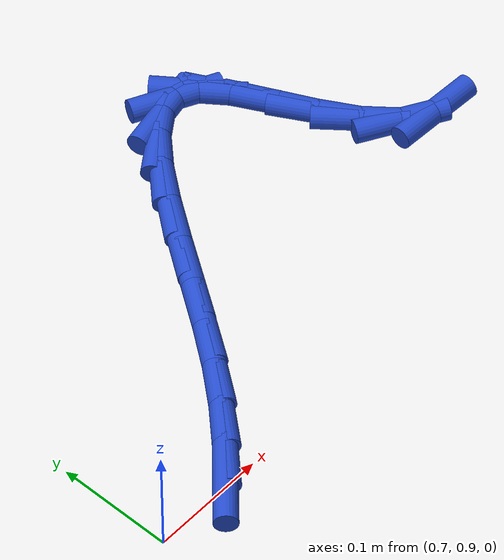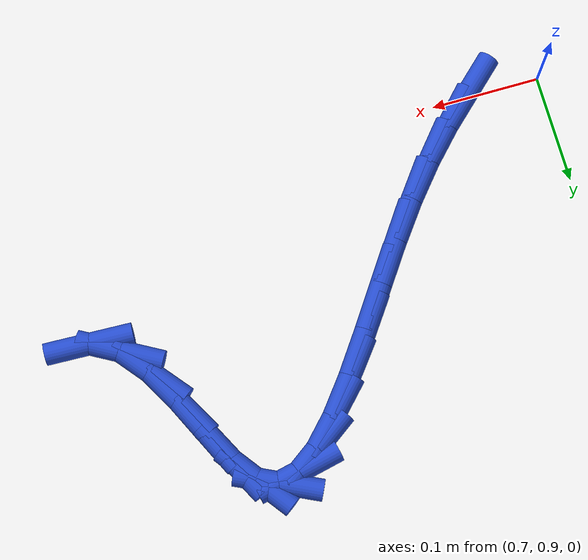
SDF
<sdf version="1.6">
 <world name="default">
  <model name="ground_plane">
   <static>1</static>
   <link name="link">
    <collision name="collision">
     <geometry><plane><normal>0 0 1</normal><size>100 100</size></plane></geometry>
     <surface><friction><ode><mu>100</mu><mu2>50</mu2></ode></friction></surface>
    </collision>
    <visual name="visual">
     <cast_shadows>0</cast_shadows>
     <geometry><plane><normal>0 0 1</normal><size>100 100</size></plane></geometry>
     <material>
      <script><uri>file://media/materials/scripts/gazebo.material</uri><name>Gazebo/WhiteGlow</name></script>
     </material>
    </visual>
   </link>
  </model>
  <model name="line">
   <link name="link_39">
    <pose>0.7681674538279477 0.8989621941453881 0.01 0 1.57 0.7479890849613909</pose>
    <collision name="collision">
     <geometry><cylinder><radius>0.01</radius><length>0.08</length></cylinder></geometry>
    </collision>
    <visual name="visual">
     <material>
      <script><name>Gazebo/Blue</name><uri>file://media/materials/scripts/gazebo.material</uri></script>
     </material>
     <geometry><cylinder><radius>0.01</radius><length>0.08</length></cylinder></geometry>
    </visual>
   </link>
   <link name="link_40">
    <pose>0.7940023159540255 0.9229330024165652 0.01 0 1.57 0.809381516008995</pose>
    <collision name="collision">
     <geometry><cylinder><radius>0.01</radius><length>0.08</length></cylinder></geometry>
    </collision>
    <visual name="visual">
     <material>
      <script><name>Gazebo/Blue</name><uri>file://media/materials/scripts/gazebo.material</uri></script>
     </material>
     <geometry><cylinder><radius>0.01</radius><length>0.08</length></cylinder></geometry>
    </visual>
   </link>
   <link name="link_41">
    <pose>0.8197526331664358 0.9499490773147576 0.01 0 1.57 0.8712639860786564</pose>
    <collision name="collision">
     <geometry><cylinder><radius>0.01</radius><length>0.08</length></cylinder></geometry>
    </collision>
    <visual name="visual">
     <material>
      <script><name>Gazebo/Blue</name><uri>file://media/materials/scripts/gazebo.material</uri></script>
     </material>
     <geometry><cylinder><radius>0.01</radius><length>0.08</length></cylinder></geometry>
    </visual>
   </link>
   <link name="link_42">
    <pose>0.8454051874087583 0.9804337853311855 0.01 0 1.57 0.9275647869740576</pose>
    <collision name="collision">
     <geometry><cylinder><radius>0.01</radius><length>0.08</length></cylinder></geometry>
    </collision>
    <visual name="visual">
     <material>
      <script><name>Gazebo/Blue</name><uri>file://media/materials/scripts/gazebo.material</uri></script>
     </material>
     <geometry><cylinder><radius>0.01</radius><length>0.08</length></cylinder></geometry>
    </visual>
   </link>
   <link name="link_43">
    <pose>0.8709216324254584 1.014474825673467 0.01 0 1.57 0.9600698403931758</pose>
    <collision name="collision">
     <geometry><cylinder><radius>0.01</radius><length>0.08</length></cylinder></geometry>
    </collision>
    <visual name="visual">
     <material>
      <script><name>Gazebo/Blue</name><uri>file://media/materials/scripts/gazebo.material</uri></script>
     </material>
     <geometry><cylinder><radius>0.01</radius><length>0.08</length></cylinder></geometry>
    </visual>
   </link>
   <link name="link_44">
    <pose>0.896139370747404 1.0505001261041893 0.01 0 1.57 0.9681425664664552</pose>
    <collision name="collision">
     <geometry><cylinder><radius>0.01</radius><length>0.08</length></cylinder></geometry>
    </collision>
    <visual name="visual">
     <material>
      <script><name>Gazebo/Blue</name><uri>file://media/materials/scripts/gazebo.material</uri></script>
     </material>
     <geometry><cylinder><radius>0.01</radius><length>0.08</length></cylinder></geometry>
    </visual>
   </link>
   <link name="link_45">
    <pose>0.9208574692893257 1.0864255199029347 0.01 0 1.57 0.9521839637314978</pose>
    <collision name="collision">
     <geometry><cylinder><radius>0.01</radius><length>0.08</length></cylinder></geometry>
    </collision>
    <visual name="visual">
     <material>
      <script><name>Gazebo/Blue</name><uri>file://media/materials/scripts/gazebo.material</uri></script>
     </material>
     <geometry><cylinder><radius>0.01</radius><length>0.08</length></cylinder></geometry>
    </visual>
   </link>
   <link name="link_46">
    <pose>0.944874984016002 1.120166694077723 0.01 0 1.57 0.9056896578907303</pose>
    <collision name="collision">
     <geometry><cylinder><radius>0.01</radius><length>0.08</length></cylinder></geometry>
    </collision>
    <visual name="visual">
     <material>
      <script><name>Gazebo/Blue</name><uri>file://media/materials/scripts/gazebo.material</uri></script>
     </material>
     <geometry><cylinder><radius>0.01</radius><length>0.08</length></cylinder></geometry>
    </visual>
   </link>
   <link name="link_47">
    <pose>0.9679909708922108 1.1496393356365728 0.01 0 1.57 0.8099046634219983</pose>
    <collision name="collision">
     <geometry><cylinder><radius>0.01</radius><length>0.08</length></cylinder></geometry>
    </collision>
    <visual name="visual">
     <material>
      <script><name>Gazebo/Blue</name><uri>file://media/materials/scripts/gazebo.material</uri></script>
     </material>
     <geometry><cylinder><radius>0.01</radius><length>0.08</length></cylinder></geometry>
    </visual>
   </link>
   <link name="link_48">
    <pose>0.9900044858827304 1.172759131587503 0.01 0 1.57 0.6167142860689221</pose>
    <collision name="collision">
     <geometry><cylinder><radius>0.01</radius><length>0.08</length></cylinder></geometry>
    </collision>
    <visual name="visual">
     <material>
      <script><name>Gazebo/Blue</name><uri>file://media/materials/scripts/gazebo.material</uri></script>
     </material>
     <geometry><cylinder><radius>0.01</radius><length>0.08</length></cylinder></geometry>
    </visual>
   </link>
   <link name="link_49">
    <pose>1.0107145849523387 1.1874417689385328 0.01 0 1.57 0.21336477712065735</pose>
    <collision name="collision">
     <geometry><cylinder><radius>0.01</radius><length>0.08</length></cylinder></geometry>
    </collision>
    <visual name="visual">
     <material>
      <script><name>Gazebo/Blue</name><uri>file://media/materials/scripts/gazebo.material</uri></script>
     </material>
     <geometry><cylinder><radius>0.01</radius><length>0.08</length></cylinder></geometry>
    </visual>
   </link>
   <link name="link_50">
    <pose>1.029920324065814 1.1916029346976815 0.01 0 1.57 -0.4494004433744486</pose>
    <collision name="collision">
     <geometry><cylinder><radius>0.01</radius><length>0.08</length></cylinder></geometry>
    </collision>
    <visual name="visual">
     <material>
      <script><name>Gazebo/Blue</name><uri>file://media/materials/scripts/gazebo.material</uri></script>
     </material>
     <geometry><cylinder><radius>0.01</radius><length>0.08</length></cylinder></geometry>
    </visual>
   </link>
   <link name="link_51">
    <pose>1.0474214323632418 1.1831618732783176 0.01 0 1.57 -0.9298503274344448</pose>
    <collision name="collision">
     <geometry><cylinder><radius>0.01</radius><length>0.08</length></cylinder></geometry>
    </collision>
    <visual name="visual">
     <material>
      <script><name>Gazebo/Blue</name><uri>file://media/materials/scripts/gazebo.material</uri></script>
     </material>
     <geometry><cylinder><radius>0.01</radius><length>0.08</length></cylinder></geometry>
    </visual>
   </link>
   <link name="link_52">
    <pose>1.0633524372819556 1.161807075886515 0.01 0 1.57 -1.0966642260439485</pose>
    <collision name="collision">
     <geometry><cylinder><radius>0.01</radius><length>0.08</length></cylinder></geometry>
    </collision>
    <visual name="visual">
     <material>
      <script><name>Gazebo/Blue</name><uri>file://media/materials/scripts/gazebo.material</uri></script>
     </material>
     <geometry><cylinder><radius>0.01</radius><length>0.08</length></cylinder></geometry>
    </visual>
   </link>
   <link name="link_53">
    <pose>1.0787234840074886 1.1318542492947743 0.01 0 1.57 -1.1259893347179983</pose>
    <collision name="collision">
     <geometry><cylinder><radius>0.01</radius><length>0.08</length></cylinder></geometry>
    </collision>
    <visual name="visual">
     <material>
      <script><name>Gazebo/Blue</name><uri>file://media/materials/scripts/gazebo.material</uri></script>
     </material>
     <geometry><cylinder><radius>0.01</radius><length>0.08</length></cylinder></geometry>
    </visual>
   </link>
   <link name="link_54">
    <pose>1.0946860972045622 1.098366222325393 0.01 0 1.57 -1.0648958203347527</pose>
    <collision name="collision">
     <geometry><cylinder><radius>0.01</radius><length>0.08</length></cylinder></geometry>
    </collision>
    <visual name="visual">
     <material>
      <script><name>Gazebo/Blue</name><uri>file://media/materials/scripts/gazebo.material</uri></script>
     </material>
     <geometry><cylinder><radius>0.01</radius><length>0.08</length></cylinder></geometry>
    </visual>
   </link>
   <link name="link_55">
    <pose>1.1123918015378984 1.0664058238006695 0.01 0 1.57 -0.8887827363853509</pose>
    <collision name="collision">
     <geometry><cylinder><radius>0.01</radius><length>0.08</length></cylinder></geometry>
    </collision>
    <visual name="visual">
     <material>
      <script><name>Gazebo/Blue</name><uri>file://media/materials/scripts/gazebo.material</uri></script>
     </material>
     <geometry><cylinder><radius>0.01</radius><length>0.08</length></cylinder></geometry>
    </visual>
   </link>
   <link name="link_56">
    <pose>1.1329921216722192 1.0410358825429014 0.01 0 1.57 -0.5116753596276041</pose>
    <collision name="collision">
     <geometry><cylinder><radius>0.01</radius><length>0.08</length></cylinder></geometry>
    </collision>
    <visual name="visual">
     <material>
      <script><name>Gazebo/Blue</name><uri>file://media/materials/scripts/gazebo.material</uri></script>
     </material>
     <geometry><cylinder><radius>0.01</radius><length>0.08</length></cylinder></geometry>
    </visual>
   </link>
   <link name="link_57">
    <pose>1.1576093824203002 1.027211805456631 0.01 0 1.57 -0.03925318195446498</pose>
    <collision name="collision">
     <geometry><cylinder><radius>0.01</radius><length>0.08</length></cylinder></geometry>
    </collision>
    <visual name="visual">
     <material>
      <script><name>Gazebo/Blue</name><uri>file://media/materials/scripts/gazebo.material</uri></script>
     </material>
     <geometry><cylinder><radius>0.01</radius><length>0.08</length></cylinder></geometry>
    </visual>
   </link>
  </model>
 </world>
</sdf>
